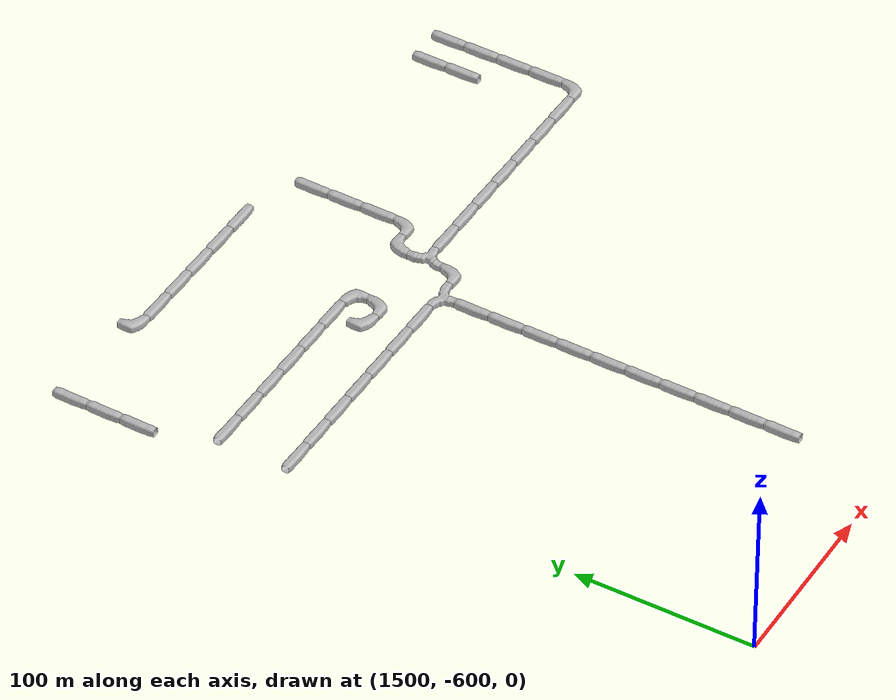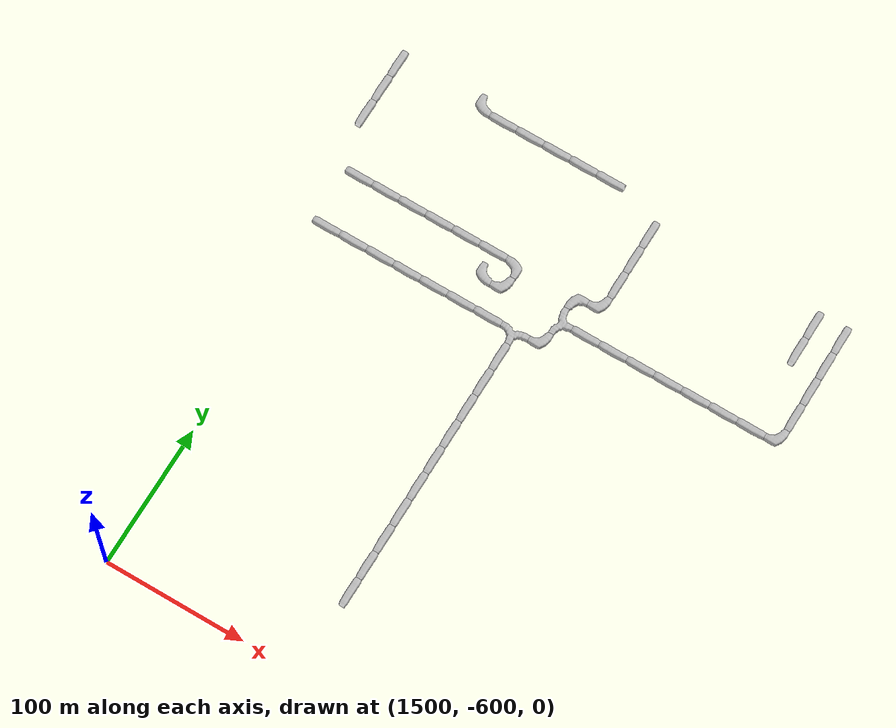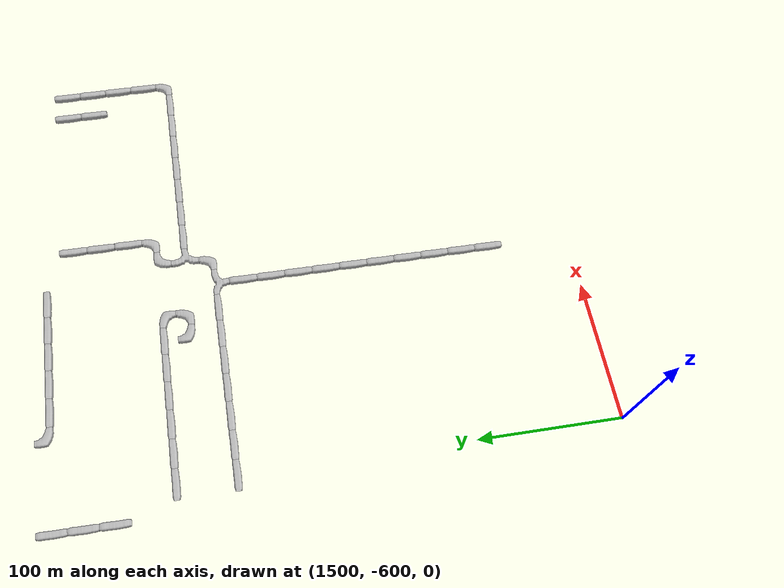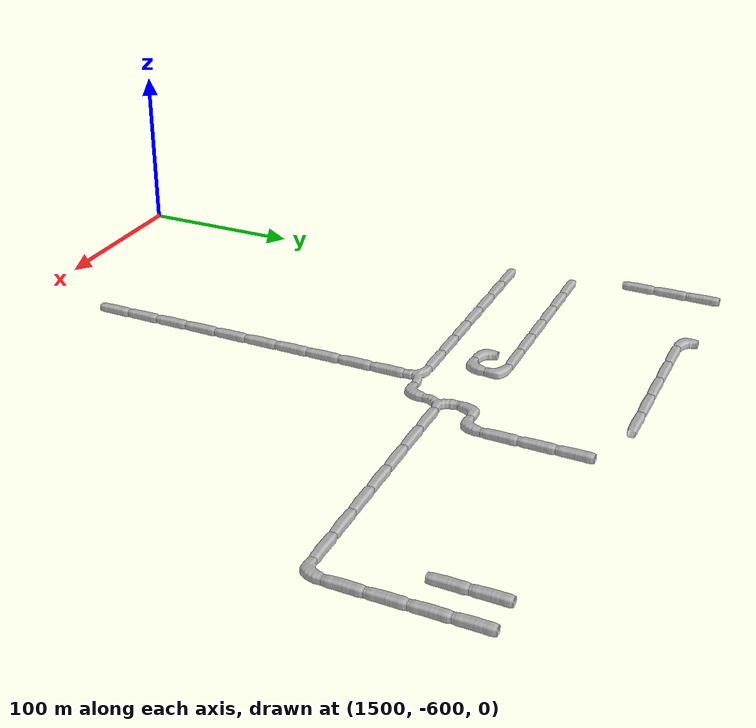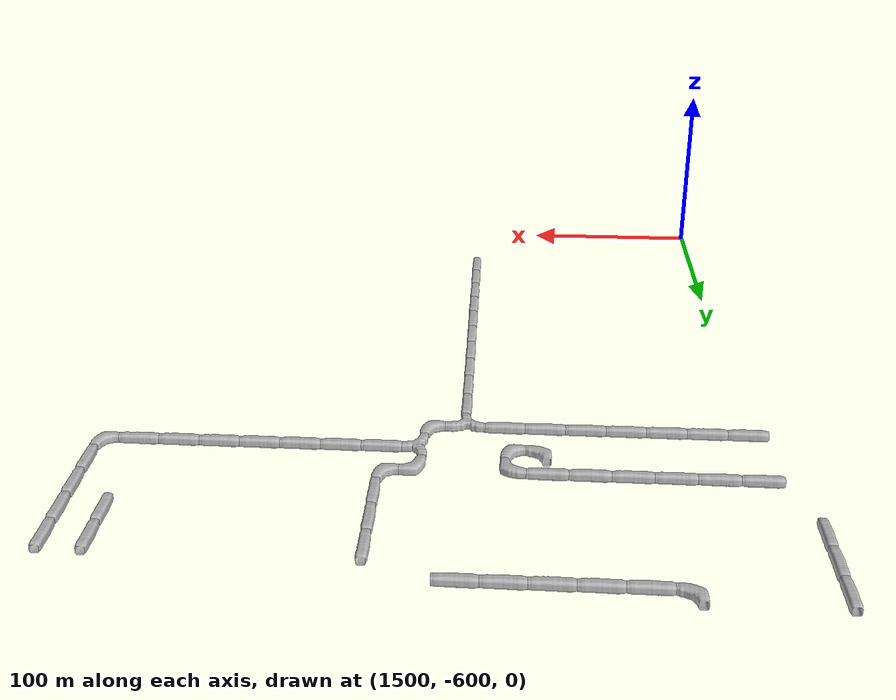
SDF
<sdf version="1.6">
 <world name="cave_32000_8">
  <include>
   <static>true</static>
   <name>cave_75_-17</name>
   <pose>1500 -340 0 0 0 1.5707963267948966</pose>
   <uri>model://cave_straight_20m</uri>
  </include>
  <include>
   <static>true</static>
   <name>cave_76_-17</name>
   <pose>1520 -340 0 0 0 1.5707963267948966</pose>
   <uri>model://cave_straight_20m</uri>
  </include>
  <include>
   <static>true</static>
   <name>cave_77_-17</name>
   <pose>1540 -340 0 0 0 1.5707963267948966</pose>
   <uri>model://cave_straight_20m</uri>
  </include>
  <include>
   <static>true</static>
   <name>cave_78_-17</name>
   <pose>1560 -340 0 0 0 1.5707963267948966</pose>
   <uri>model://cave_straight_20m</uri>
  </include>
  <include>
   <static>true</static>
   <name>cave_79_-17</name>
   <pose>1580 -340 0 0 0 1.5707963267948966</pose>
   <uri>model://cave_straight_20m</uri>
  </include>
  <include>
   <static>true</static>
   <name>cave_80_-17</name>
   <pose>1600 -340 0 0 0 1.5707963267948966</pose>
   <uri>model://cave_straight_20m</uri>
  </include>
  <include>
   <static>true</static>
   <name>cave_81_-17</name>
   <pose>1620 -340 0 0 0 1.5707963267948966</pose>
   <uri>model://cave_straight_20m</uri>
  </include>
  <include>
   <static>true</static>
   <name>cave_82_-17</name>
   <pose>1640 -340 0 0 0 3.141592653589793</pose>
   <uri>model://cave_3way_20m</uri>
  </include>
  <include>
   <static>true</static>
   <name>cave_83_-17</name>
   <pose>1660 -340 0 0 0 1.5707963267948966</pose>
   <uri>model://cave_L_20m</uri>
  </include>
  <include>
   <static>true</static>
   <name>cave_83_-16</name>
   <pose>1660 -320 0 0 0 -1.5707963267948966</pose>
   <uri>model://cave_3way_20m</uri>
  </include>
  <include>
   <static>true</static>
   <name>cave_84_-16</name>
   <pose>1680 -320 0 0 0 1.5707963267948966</pose>
   <uri>model://cave_straight_20m</uri>
  </include>
  <include>
   <static>true</static>
   <name>cave_85_-16</name>
   <pose>1700 -320 0 0 0 1.5707963267948966</pose>
   <uri>model://cave_straight_20m</uri>
  </include>
  <include>
   <static>true</static>
   <name>cave_86_-16</name>
   <pose>1720 -320 0 0 0 1.5707963267948966</pose>
   <uri>model://cave_straight_20m</uri>
  </include>
  <include>
   <static>true</static>
   <name>cave_87_-16</name>
   <pose>1740 -320 0 0 0 1.5707963267948966</pose>
   <uri>model://cave_straight_20m</uri>
  </include>
  <include>
   <static>true</static>
   <name>cave_88_-16</name>
   <pose>1760 -320 0 0 0 1.5707963267948966</pose>
   <uri>model://cave_straight_20m</uri>
  </include>
  <include>
   <static>true</static>
   <name>cave_89_-16</name>
   <pose>1780 -320 0 0 0 1.5707963267948966</pose>
   <uri>model://cave_straight_20m</uri>
  </include>
  <include>
   <static>true</static>
   <name>cave_90_-16</name>
   <pose>1800 -320 0 0 0 1.5707963267948966</pose>
   <uri>model://cave_straight_20m</uri>
  </include>
  <include>
   <static>true</static>
   <name>cave_91_-16</name>
   <pose>1820 -320 0 0 0 1.5707963267948966</pose>
   <uri>model://cave_L_20m</uri>
  </include>
  <include>
   <static>true</static>
   <name>cave_91_-15</name>
   <pose>1820 -300 0 0 0 0.0</pose>
   <uri>model://cave_straight_20m</uri>
  </include>
  <include>
   <static>true</static>
   <name>cave_91_-14</name>
   <pose>1820 -280 0 0 0 0.0</pose>
   <uri>model://cave_straight_20m</uri>
  </include>
  <include>
   <static>true</static>
   <name>cave_91_-13</name>
   <pose>1820 -260 0 0 0 0.0</pose>
   <uri>model://cave_straight_20m</uri>
  </include>
  <include>
   <static>true</static>
   <name>cave_91_-12</name>
   <pose>1820 -240 0 0 0 0.0</pose>
   <uri>model://cave_straight_20m</uri>
  </include>
  <include>
   <static>true</static>
   <name>cave_90_-12</name>
   <pose>1800 -240 0 0 0 0.0</pose>
   <uri>model://cave_straight_20m</uri>
  </include>
  <include>
   <static>true</static>
   <name>cave_90_-13</name>
   <pose>1800 -260 0 0 0 0.0</pose>
   <uri>model://cave_straight_20m</uri>
  </include>
  <include>
   <static>true</static>
   <name>cave_83_-15</name>
   <pose>1660 -300 0 0 0 -1.5707963267948966</pose>
   <uri>model://cave_L_20m</uri>
  </include>
  <include>
   <static>true</static>
   <name>cave_84_-15</name>
   <pose>1680 -300 0 0 0 1.5707963267948966</pose>
   <uri>model://cave_L_20m</uri>
  </include>
  <include>
   <static>true</static>
   <name>cave_84_-14</name>
   <pose>1680 -280 0 0 0 0.0</pose>
   <uri>model://cave_straight_20m</uri>
  </include>
  <include>
   <static>true</static>
   <name>cave_84_-13</name>
   <pose>1680 -260 0 0 0 0.0</pose>
   <uri>model://cave_straight_20m</uri>
  </include>
  <include>
   <static>true</static>
   <name>cave_84_-12</name>
   <pose>1680 -240 0 0 0 0.0</pose>
   <uri>model://cave_straight_20m</uri>
  </include>
  <include>
   <static>true</static>
   <name>cave_82_-11</name>
   <pose>1640 -220 0 0 0 1.5707963267948966</pose>
   <uri>model://cave_straight_20m</uri>
  </include>
  <include>
   <static>true</static>
   <name>cave_81_-11</name>
   <pose>1620 -220 0 0 0 1.5707963267948966</pose>
   <uri>model://cave_straight_20m</uri>
  </include>
  <include>
   <static>true</static>
   <name>cave_80_-11</name>
   <pose>1600 -220 0 0 0 1.5707963267948966</pose>
   <uri>model://cave_straight_20m</uri>
  </include>
  <include>
   <static>true</static>
   <name>cave_79_-11</name>
   <pose>1580 -220 0 0 0 1.5707963267948966</pose>
   <uri>model://cave_straight_20m</uri>
  </include>
  <include>
   <static>true</static>
   <name>cave_78_-11</name>
   <pose>1560 -220 0 0 0 1.5707963267948966</pose>
   <uri>model://cave_straight_20m</uri>
  </include>
  <include>
   <static>true</static>
   <name>cave_77_-11</name>
   <pose>1540 -220 0 0 0 0.0</pose>
   <uri>model://cave_L_20m</uri>
  </include>
  <include>
   <static>true</static>
   <name>cave_82_-18</name>
   <pose>1640 -360 0 0 0 0.0</pose>
   <uri>model://cave_straight_20m</uri>
  </include>
  <include>
   <static>true</static>
   <name>cave_82_-19</name>
   <pose>1640 -380 0 0 0 0.0</pose>
   <uri>model://cave_straight_20m</uri>
  </include>
  <include>
   <static>true</static>
   <name>cave_82_-20</name>
   <pose>1640 -400 0 0 0 0.0</pose>
   <uri>model://cave_straight_20m</uri>
  </include>
  <include>
   <static>true</static>
   <name>cave_82_-21</name>
   <pose>1640 -420 0 0 0 0.0</pose>
   <uri>model://cave_straight_20m</uri>
  </include>
  <include>
   <static>true</static>
   <name>cave_82_-22</name>
   <pose>1640 -440 0 0 0 0.0</pose>
   <uri>model://cave_straight_20m</uri>
  </include>
  <include>
   <static>true</static>
   <name>cave_82_-23</name>
   <pose>1640 -460 0 0 0 0.0</pose>
   <uri>model://cave_straight_20m</uri>
  </include>
  <include>
   <static>true</static>
   <name>cave_82_-24</name>
   <pose>1640 -480 0 0 0 0.0</pose>
   <uri>model://cave_straight_20m</uri>
  </include>
  <include>
   <static>true</static>
   <name>cave_82_-25</name>
   <pose>1640 -500 0 0 0 0.0</pose>
   <uri>model://cave_straight_20m</uri>
  </include>
  <include>
   <static>true</static>
   <name>cave_82_-26</name>
   <pose>1640 -520 0 0 0 0.0</pose>
   <uri>model://cave_straight_20m</uri>
  </include>
  <include>
   <static>true</static>
   <name>cave_82_-27</name>
   <pose>1640 -540 0 0 0 0.0</pose>
   <uri>model://cave_straight_20m</uri>
  </include>
  <include>
   <static>true</static>
   <name>cave_75_-15</name>
   <pose>1500 -300 0 0 0 1.5707963267948966</pose>
   <uri>model://cave_straight_20m</uri>
  </include>
  <include>
   <static>true</static>
   <name>cave_76_-15</name>
   <pose>1520 -300 0 0 0 1.5707963267948966</pose>
   <uri>model://cave_straight_20m</uri>
  </include>
  <include>
   <static>true</static>
   <name>cave_77_-15</name>
   <pose>1540 -300 0 0 0 1.5707963267948966</pose>
   <uri>model://cave_straight_20m</uri>
  </include>
  <include>
   <static>true</static>
   <name>cave_78_-15</name>
   <pose>1560 -300 0 0 0 1.5707963267948966</pose>
   <uri>model://cave_straight_20m</uri>
  </include>
  <include>
   <static>true</static>
   <name>cave_79_-15</name>
   <pose>1580 -300 0 0 0 1.5707963267948966</pose>
   <uri>model://cave_straight_20m</uri>
  </include>
  <include>
   <static>true</static>
   <name>cave_80_-15</name>
   <pose>1600 -300 0 0 0 1.5707963267948966</pose>
   <uri>model://cave_straight_20m</uri>
  </include>
  <include>
   <static>true</static>
   <name>cave_81_-15</name>
   <pose>1620 -300 0 0 0 3.141592653589793</pose>
   <uri>model://cave_L_20m</uri>
  </include>
  <include>
   <static>true</static>
   <name>cave_81_-16</name>
   <pose>1620 -320 0 0 0 1.5707963267948966</pose>
   <uri>model://cave_L_20m</uri>
  </include>
  <include>
   <static>true</static>
   <name>cave_80_-16</name>
   <pose>1600 -320 0 0 0 0.0</pose>
   <uri>model://cave_L_20m</uri>
  </include>
  <include>
   <static>true</static>
   <name>cave_74_-11</name>
   <pose>1480 -220 0 0 0 0.0</pose>
   <uri>model://cave_straight_20m</uri>
  </include>
  <include>
   <static>true</static>
   <name>cave_74_-12</name>
   <pose>1480 -240 0 0 0 0.0</pose>
   <uri>model://cave_straight_20m</uri>
  </include>
  <include>
   <static>true</static>
   <name>cave_74_-13</name>
   <pose>1480 -260 0 0 0 0.0</pose>
   <uri>model://cave_straight_20m</uri>
  </include>
 </world>
</sdf>
